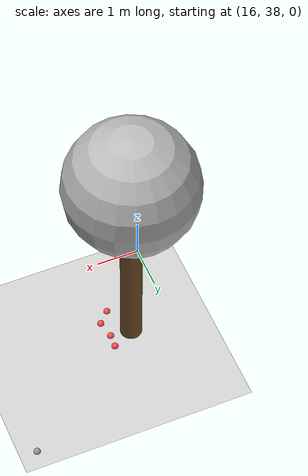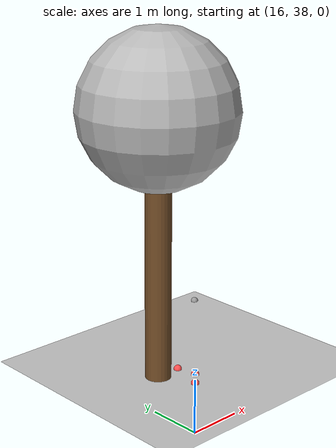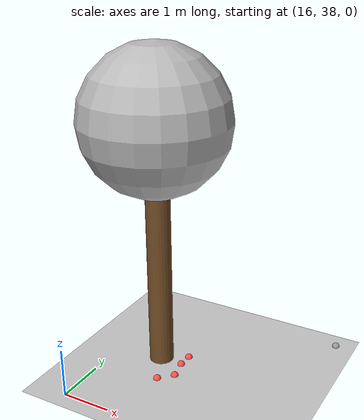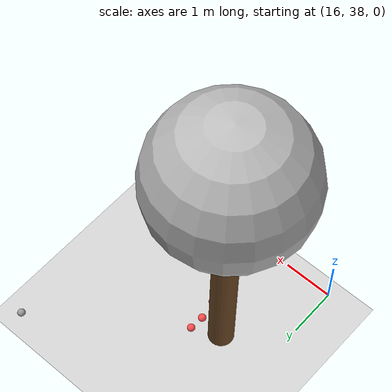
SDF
<sdf version="1.7">
 <world name="default">
  <model name="ground_plane">
   <static>1</static>
   <link name="link">
    <collision name="collision">
     <geometry><plane><normal>0 0 1</normal><size>100 100</size></plane></geometry>
     <surface>
      <contact><collide_bitmask>65535</collide_bitmask></contact>
      <friction><ode><mu>100</mu><mu2>50</mu2></ode></friction>
     </surface>
    </collision>
    <visual name="visual">
     <cast_shadows>0</cast_shadows>
     <geometry><plane><normal>0 0 1</normal><size>100 100</size></plane></geometry>
     <material>
      <script><uri>file://media/materials/scripts/gazebo.material</uri><name>Gazebo/Grey</name></script>
     </material>
    </visual>
   </link>
  </model>
  <model name="tree_simple_15">
   <static>1</static>
   <link name="link">
    <pose>0 0 0.1 0 -0 0</pose>
    <inertial>
     <mass>666</mass>
     <inertia>
      <ixx>0.0861167</ixx>
      <ixy>0</ixy>
      <ixz>0</ixz>
      <iyy>0.0861167</iyy>
      <iyz>0</iyz>
      <izz>0.0861167</izz>
     </inertia>
    </inertial>
    <collision name="collision_trunk">
     <pose>0 0 2 0 -0 0</pose>
     <geometry><cylinder><radius>0.25</radius><length>4</length></cylinder></geometry>
     <surface>
      <contact>
       <poissons_ratio>0.347</poissons_ratio>
       <elastic_modulus>8.8e+09</elastic_modulus>
       <ode><kp>100000</kp><kd>100</kd><max_vel>100</max_vel><min_depth>0.001</min_depth></ode>
      </contact>
      <friction>
       <torsional>
        <coefficient>1</coefficient>
        <use_patch_radius>0</use_patch_radius>
        <surface_radius>0.01</surface_radius>
       </torsional>
      </friction>
     </surface>
    </collision>
    <collision name="collision_treetop">
     <pose>0 0 5.2 0 -0 0</pose>
     <geometry><sphere><radius>1.5</radius></sphere></geometry>
     <surface>
      <contact>
       <poissons_ratio>0.347</poissons_ratio>
       <elastic_modulus>8.8e+09</elastic_modulus>
       <ode><kp>100000</kp><kd>100</kd><max_vel>100</max_vel><min_depth>0.001</min_depth></ode>
      </contact>
      <friction>
       <torsional>
        <coefficient>1</coefficient>
        <use_patch_radius>0</use_patch_radius>
        <surface_radius>0.01</surface_radius>
       </torsional>
      </friction>
     </surface>
    </collision>
    <visual name="trunk">
     <pose>0 0 2 0 -0 0</pose>
     <geometry><cylinder><radius>0.25</radius><length>4</length></cylinder></geometry>
     <material>
      <script>
       <uri>model://tree_simple/scripts</uri>
       <uri>model://tree_simple/materials/textures</uri>
       <name>TreeSimple/Trunk</name>
      </script>
     </material>
    </visual>
    <visual name="treetop">
     <pose>0 0 5.2 0 -0 0</pose>
     <geometry><sphere><radius>1.5</radius></sphere></geometry>
     <material>
      <script>
       <uri>model://tree_simple/scripts</uri>
       <uri>model://tree_simple/materials/textures</uri>
       <name>TreeSimple/Treetop</name>
      </script>
     </material>
    </visual>
   </link>
   <pose>17 40 -0.1 0 -0 0</pose>
  </model>
  <model name="seed_black_0">
   <link name="link">
    <inertial>
     <mass>1</mass>
     <inertia><ixx>0.1</ixx><ixy>0</ixy><ixz>0</ixz><iyy>0.1</iyy><iyz>0</iyz><izz>0.1</izz></inertia>
    </inertial>
    <visual name="visual">
     <geometry><sphere><radius>0.08</radius></sphere></geometry>
     <material>
      <script><name>Gazebo/Grey</name><uri>file://media/materials/scripts/gazebo.material</uri></script>
      <shader type="pixel"><normal_map>__default__</normal_map></shader>
      <ambient>0 0 0 1</ambient>
      <diffuse>0.7 0.7 0.7 1</diffuse>
      <specular>0.01 0.01 0.01 1</specular>
      <emissive>0 0 0 1</emissive>
     </material>
    </visual>
    <collision name="collision">
     <geometry><sphere><radius>0.0005</radius></sphere></geometry>
     <surface>
      <friction>
       <ode><mu>1</mu><mu2>1</mu2><fdir1>0 0 0</fdir1><slip1>0</slip1><slip2>0</slip2></ode>
       <torsional>
        <coefficient>1</coefficient>
        <patch_radius>0</patch_radius>
        <surface_radius>0</surface_radius>
        <use_patch_radius>1</use_patch_radius>
        <ode><slip>0</slip></ode>
       </torsional>
      </friction>
      <bounce><restitution_coefficient>0</restitution_coefficient><threshold>1e+06</threshold></bounce>
      <contact>
       <collide_without_contact>0</collide_without_contact>
       <collide_without_contact_bitmask>1</collide_without_contact_bitmask>
       <collide_bitmask>1</collide_bitmask>
       <ode>
        <soft_cfm>0</soft_cfm>
        <soft_erp>0.2</soft_erp>
        <kp>1e+13</kp>
        <kd>1</kd>
        <max_vel>0.01</max_vel>
        <min_depth>0</min_depth>
       </ode>
       <bullet>
        <split_impulse>1</split_impulse>
        <split_impulse_penetration_threshold>-0.01</split_impulse_penetration_threshold>
        <soft_cfm>0</soft_cfm>
        <soft_erp>0.2</soft_erp>
        <kp>1e+13</kp>
        <kd>1</kd>
       </bullet>
      </contact>
     </surface>
    </collision>
   </link>
   <static>0</static>
   <pose>20.1305 42.1794 0.0005 0 -0 0</pose>
  </model>
  <model name="seed_red_58">
   <link name="link">
    <inertial>
     <mass>1</mass>
     <inertia><ixx>0.1</ixx><ixy>0</ixy><ixz>0</ixz><iyy>0.1</iyy><iyz>0</iyz><izz>0.1</izz></inertia>
    </inertial>
    <visual name="visual">
     <geometry><sphere><radius>0.08</radius></sphere></geometry>
     <material>
      <script><name>Gazebo/Grey</name><uri>file://media/materials/scripts/gazebo.material</uri></script>
      <shader type="pixel"><normal_map>__default__</normal_map></shader>
      <ambient>1 0.3 0.3 1</ambient>
      <diffuse>0.7 0.7 0.7 1</diffuse>
      <specular>0.01 0.01 0.01 1</specular>
      <emissive>0 0 0 1</emissive>
     </material>
    </visual>
    <collision name="collision">
     <geometry><sphere><radius>0.0005</radius></sphere></geometry>
     <surface>
      <friction>
       <ode><mu>1</mu><mu2>1</mu2><fdir1>0 0 0</fdir1><slip1>0</slip1><slip2>0</slip2></ode>
       <torsional>
        <coefficient>1</coefficient>
        <patch_radius>0</patch_radius>
        <surface_radius>0</surface_radius>
        <use_patch_radius>1</use_patch_radius>
        <ode><slip>0</slip></ode>
       </torsional>
      </friction>
      <bounce><restitution_coefficient>0</restitution_coefficient><threshold>1e+06</threshold></bounce>
      <contact>
       <collide_without_contact>0</collide_without_contact>
       <collide_without_contact_bitmask>1</collide_without_contact_bitmask>
       <collide_bitmask>1</collide_bitmask>
       <ode>
        <soft_cfm>0</soft_cfm>
        <soft_erp>0.2</soft_erp>
        <kp>1e+13</kp>
        <kd>1</kd>
        <max_vel>0.01</max_vel>
        <min_depth>0</min_depth>
       </ode>
       <bullet>
        <split_impulse>1</split_impulse>
        <split_impulse_penetration_threshold>-0.01</split_impulse_penetration_threshold>
        <soft_cfm>0</soft_cfm>
        <soft_erp>0.2</soft_erp>
        <kp>1e+13</kp>
        <kd>1</kd>
       </bullet>
      </contact>
     </surface>
    </collision>
   </link>
   <static>0</static>
   <pose>17.4914 39.9729 0.0005 0 -0 0</pose>
  </model>
  <model name="seed_red_59">
   <link name="link">
    <inertial>
     <mass>1</mass>
     <inertia><ixx>0.1</ixx><ixy>0</ixy><ixz>0</ixz><iyy>0.1</iyy><iyz>0</iyz><izz>0.1</izz></inertia>
    </inertial>
    <visual name="visual">
     <geometry><sphere><radius>0.08</radius></sphere></geometry>
     <material>
      <script><name>Gazebo/Grey</name><uri>file://media/materials/scripts/gazebo.material</uri></script>
      <shader type="pixel"><normal_map>__default__</normal_map></shader>
      <ambient>1 0.3 0.3 1</ambient>
      <diffuse>0.7 0.7 0.7 1</diffuse>
      <specular>0.01 0.01 0.01 1</specular>
      <emissive>0 0 0 1</emissive>
     </material>
    </visual>
    <collision name="collision">
     <geometry><sphere><radius>0.0005</radius></sphere></geometry>
     <surface>
      <friction>
       <ode><mu>1</mu><mu2>1</mu2><fdir1>0 0 0</fdir1><slip1>0</slip1><slip2>0</slip2></ode>
       <torsional>
        <coefficient>1</coefficient>
        <patch_radius>0</patch_radius>
        <surface_radius>0</surface_radius>
        <use_patch_radius>1</use_patch_radius>
        <ode><slip>0</slip></ode>
       </torsional>
      </friction>
      <bounce><restitution_coefficient>0</restitution_coefficient><threshold>1e+06</threshold></bounce>
      <contact>
       <collide_without_contact>0</collide_without_contact>
       <collide_without_contact_bitmask>1</collide_without_contact_bitmask>
       <collide_bitmask>1</collide_bitmask>
       <ode>
        <soft_cfm>0</soft_cfm>
        <soft_erp>0.2</soft_erp>
        <kp>1e+13</kp>
        <kd>1</kd>
        <max_vel>0.01</max_vel>
        <min_depth>0</min_depth>
       </ode>
       <bullet>
        <split_impulse>1</split_impulse>
        <split_impulse_penetration_threshold>-0.01</split_impulse_penetration_threshold>
        <soft_cfm>0</soft_cfm>
        <soft_erp>0.2</soft_erp>
        <kp>1e+13</kp>
        <kd>1</kd>
       </bullet>
      </contact>
     </surface>
    </collision>
   </link>
   <static>0</static>
   <pose>17.5696 39.5748 0.0005 0 -0 0</pose>
  </model>
  <model name="seed_red_63">
   <link name="link">
    <inertial>
     <mass>1</mass>
     <inertia><ixx>0.1</ixx><ixy>0</ixy><ixz>0</ixz><iyy>0.1</iyy><iyz>0</iyz><izz>0.1</izz></inertia>
    </inertial>
    <visual name="visual">
     <geometry><sphere><radius>0.08</radius></sphere></geometry>
     <material>
      <script><name>Gazebo/Grey</name><uri>file://media/materials/scripts/gazebo.material</uri></script>
      <shader type="pixel"><normal_map>__default__</normal_map></shader>
      <ambient>1 0.3 0.3 1</ambient>
      <diffuse>0.7 0.7 0.7 1</diffuse>
      <specular>0.01 0.01 0.01 1</specular>
      <emissive>0 0 0 1</emissive>
     </material>
    </visual>
    <collision name="collision">
     <geometry><sphere><radius>0.0005</radius></sphere></geometry>
     <surface>
      <friction>
       <ode><mu>1</mu><mu2>1</mu2><fdir1>0 0 0</fdir1><slip1>0</slip1><slip2>0</slip2></ode>
       <torsional>
        <coefficient>1</coefficient>
        <patch_radius>0</patch_radius>
        <surface_radius>0</surface_radius>
        <use_patch_radius>1</use_patch_radius>
        <ode><slip>0</slip></ode>
       </torsional>
      </friction>
      <bounce><restitution_coefficient>0</restitution_coefficient><threshold>1e+06</threshold></bounce>
      <contact>
       <collide_without_contact>0</collide_without_contact>
       <collide_without_contact_bitmask>1</collide_without_contact_bitmask>
       <collide_bitmask>1</collide_bitmask>
       <ode>
        <soft_cfm>0</soft_cfm>
        <soft_erp>0.2</soft_erp>
        <kp>1e+13</kp>
        <kd>1</kd>
        <max_vel>0.01</max_vel>
        <min_depth>0</min_depth>
       </ode>
       <bullet>
        <split_impulse>1</split_impulse>
        <split_impulse_penetration_threshold>-0.01</split_impulse_penetration_threshold>
        <soft_cfm>0</soft_cfm>
        <soft_erp>0.2</soft_erp>
        <kp>1e+13</kp>
        <kd>1</kd>
       </bullet>
      </contact>
     </surface>
    </collision>
   </link>
   <static>0</static>
   <pose>17.3113 39.3137 0.0005 0 -0 0</pose>
  </model>
  <model name="seed_red_65">
   <link name="link">
    <inertial>
     <mass>1</mass>
     <inertia><ixx>0.1</ixx><ixy>0</ixy><ixz>0</ixz><iyy>0.1</iyy><iyz>0</iyz><izz>0.1</izz></inertia>
    </inertial>
    <visual name="visual">
     <geometry><sphere><radius>0.08</radius></sphere></geometry>
     <material>
      <script><name>Gazebo/Grey</name><uri>file://media/materials/scripts/gazebo.material</uri></script>
      <shader type="pixel"><normal_map>__default__</normal_map></shader>
      <ambient>1 0.3 0.3 1</ambient>
      <diffuse>0.7 0.7 0.7 1</diffuse>
      <specular>0.01 0.01 0.01 1</specular>
      <emissive>0 0 0 1</emissive>
     </material>
    </visual>
    <collision name="collision">
     <geometry><sphere><radius>0.0005</radius></sphere></geometry>
     <surface>
      <friction>
       <ode><mu>1</mu><mu2>1</mu2><fdir1>0 0 0</fdir1><slip1>0</slip1><slip2>0</slip2></ode>
       <torsional>
        <coefficient>1</coefficient>
        <patch_radius>0</patch_radius>
        <surface_radius>0</surface_radius>
        <use_patch_radius>1</use_patch_radius>
        <ode><slip>0</slip></ode>
       </torsional>
      </friction>
      <bounce><restitution_coefficient>0</restitution_coefficient><threshold>1e+06</threshold></bounce>
      <contact>
       <collide_without_contact>0</collide_without_contact>
       <collide_without_contact_bitmask>1</collide_without_contact_bitmask>
       <collide_bitmask>1</collide_bitmask>
       <ode>
        <soft_cfm>0</soft_cfm>
        <soft_erp>0.2</soft_erp>
        <kp>1e+13</kp>
        <kd>1</kd>
        <max_vel>0.01</max_vel>
        <min_depth>0</min_depth>
       </ode>
       <bullet>
        <split_impulse>1</split_impulse>
        <split_impulse_penetration_threshold>-0.01</split_impulse_penetration_threshold>
        <soft_cfm>0</soft_cfm>
        <soft_erp>0.2</soft_erp>
        <kp>1e+13</kp>
        <kd>1</kd>
       </bullet>
      </contact>
     </surface>
    </collision>
   </link>
   <static>0</static>
   <pose>17.5076 40.2724 0.0005 0 -0 0</pose>
  </model>
 </world>
</sdf>
